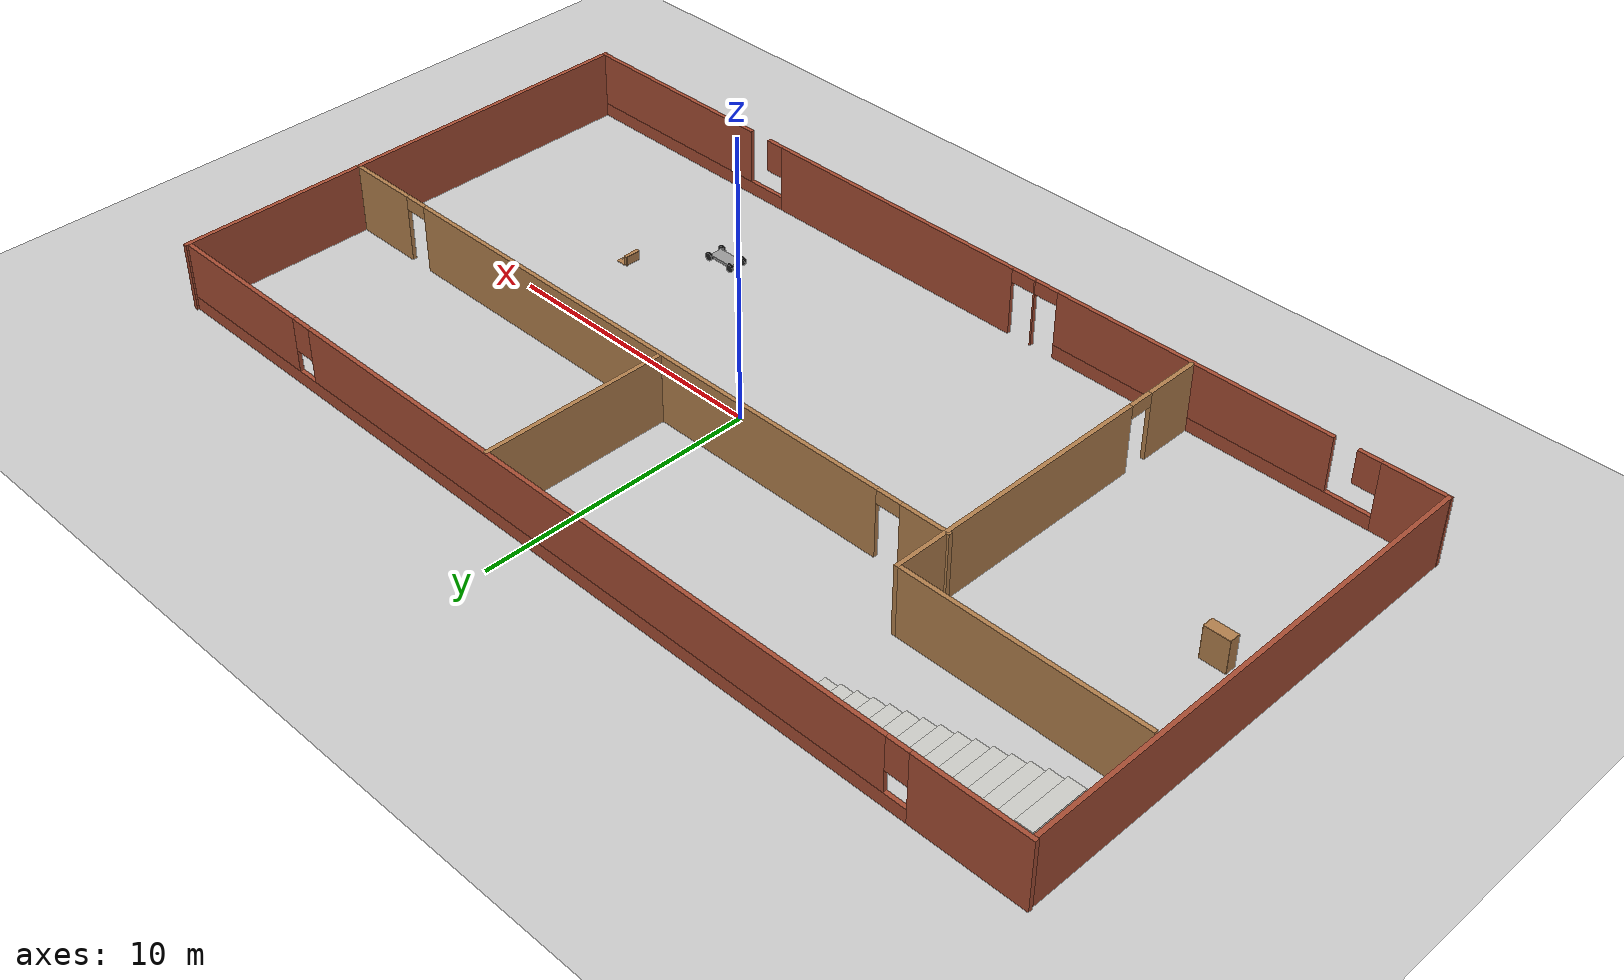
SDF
<sdf version="1.7">
 <world name="default">
  <light name="sun" type="directional">
   <pose>0 0 10 0 -0 0</pose>
   <diffuse>0.8 0.8 0.8 1</diffuse>
   <specular>0.2 0.2 0.2 1</specular>
   <attenuation>
    <range>1000</range>
    <constant>0.9</constant>
    <linear>0.01</linear>
    <quadratic>0.001</quadratic>
   </attenuation>
   <direction>-0.5 0.1 -0.9</direction>
   <spot><inner_angle>0</inner_angle><outer_angle>0</outer_angle><falloff>0</falloff></spot>
  </light>
  <model name="ground_plane">
   <static>1</static>
   <link name="link">
    <collision name="collision">
     <geometry><plane><normal>0 0 1</normal><size>100 100</size></plane></geometry>
     <surface><friction><ode><mu>100</mu><mu2>50</mu2></ode></friction></surface>
    </collision>
    <visual name="visual">
     <cast_shadows>0</cast_shadows>
     <geometry><plane><normal>0 0 1</normal><size>100 100</size></plane></geometry>
     <material>
      <script><uri>file://media/materials/scripts/gazebo.material</uri><name>Gazebo/Grey</name></script>
     </material>
    </visual>
   </link>
  </model>
  <gravity>0 0 -9.8</gravity>
  <magnetic_field>6e-06 2.3e-05 -4.2e-05</magnetic_field>
  <atmosphere type="adiabatic"/>
  <physics type="ode">
   <max_step_size>0.001</max_step_size>
   <real_time_factor>1</real_time_factor>
   <real_time_update_rate>1000</real_time_update_rate>
  </physics>
  <scene><ambient>0.4 0.4 0.4 1</ambient><background>0.7 0.7 0.7 1</background><shadows>1</shadows></scene>
  <spherical_coordinates>
   <surface_model>EARTH_WGS84</surface_model>
   <latitude_deg>0</latitude_deg>
   <longitude_deg>0</longitude_deg>
   <elevation>0</elevation>
   <heading_deg>0</heading_deg>
  </spherical_coordinates>
  <model name="hometown_room">
   <pose>-0.988842 -0.430352 0 0 -0 0</pose>
   <link name="Stairs_0">
    <visual name="Stairs_0_Visual_0">
     <pose>-9.12398 7.75669 0.083333 0 -0 -1.5708</pose>
     <geometry><box><size>1.99198 0.580655 0.166667</size></box></geometry>
     <material>
      <script><uri>file://media/materials/scripts/gazebo.material</uri><name>Gazebo/CeilingTiled</name></script>
      <ambient>1 1 1 1</ambient>
     </material>
     <meta><layer>0</layer></meta>
    </visual>
    <collision name="Stairs_0_Collision_0">
     <geometry><box><size>1.99198 0.580655 0.166667</size></box></geometry>
     <pose>-9.12398 7.75669 0.083333 0 -0 -1.5708</pose>
    </collision>
    <visual name="Stairs_0_Visual_1">
     <pose>-9.70463 7.75669 0.25 0 -0 -1.5708</pose>
     <geometry><box><size>1.99198 0.580655 0.166667</size></box></geometry>
     <material>
      <script><uri>file://media/materials/scripts/gazebo.material</uri><name>Gazebo/CeilingTiled</name></script>
      <ambient>1 1 1 1</ambient>
     </material>
     <meta><layer>0</layer></meta>
    </visual>
    <collision name="Stairs_0_Collision_1">
     <geometry><box><size>1.99198 0.580655 0.166667</size></box></geometry>
     <pose>-9.70463 7.75669 0.25 0 -0 -1.5708</pose>
    </collision>
    <visual name="Stairs_0_Visual_2">
     <pose>-10.2853 7.75669 0.416667 0 -0 -1.5708</pose>
     <geometry><box><size>1.99198 0.580655 0.166667</size></box></geometry>
     <material>
      <script><uri>file://media/materials/scripts/gazebo.material</uri><name>Gazebo/CeilingTiled</name></script>
      <ambient>1 1 1 1</ambient>
     </material>
     <meta><layer>0</layer></meta>
    </visual>
    <collision name="Stairs_0_Collision_2">
     <geometry><box><size>1.99198 0.580655 0.166667</size></box></geometry>
     <pose>-10.2853 7.75669 0.416667 0 -0 -1.5708</pose>
    </collision>
    <visual name="Stairs_0_Visual_3">
     <pose>-10.8659 7.75669 0.583333 0 -0 -1.5708</pose>
     <geometry><box><size>1.99198 0.580655 0.166667</size></box></geometry>
     <material>
      <script><uri>file://media/materials/scripts/gazebo.material</uri><name>Gazebo/CeilingTiled</name></script>
      <ambient>1 1 1 1</ambient>
     </material>
     <meta><layer>0</layer></meta>
    </visual>
    <collision name="Stairs_0_Collision_3">
     <geometry><box><size>1.99198 0.580655 0.166667</size></box></geometry>
     <pose>-10.8659 7.75669 0.583333 0 -0 -1.5708</pose>
    </collision>
    <visual name="Stairs_0_Visual_4">
     <pose>-11.4466 7.75669 0.75 0 -0 -1.5708</pose>
     <geometry><box><size>1.99198 0.580655 0.166667</size></box></geometry>
     <material>
      <script><uri>file://media/materials/scripts/gazebo.material</uri><name>Gazebo/CeilingTiled</name></script>
      <ambient>1 1 1 1</ambient>
     </material>
     <meta><layer>0</layer></meta>
    </visual>
    <collision name="Stairs_0_Collision_4">
     <geometry><box><size>1.99198 0.580655 0.166667</size></box></geometry>
     <pose>-11.4466 7.75669 0.75 0 -0 -1.5708</pose>
    </collision>
    <visual name="Stairs_0_Visual_5">
     <pose>-12.0273 7.75669 0.916667 0 -0 -1.5708</pose>
     <geometry><box><size>1.99198 0.580655 0.166667</size></box></geometry>
     <material>
      <script><uri>file://media/materials/scripts/gazebo.material</uri><name>Gazebo/CeilingTiled</name></script>
      <ambient>1 1 1 1</ambient>
     </material>
     <meta><layer>0</layer></meta>
    </visual>
    <collision name="Stairs_0_Collision_5">
     <geometry><box><size>1.99198 0.580655 0.166667</size></box></geometry>
     <pose>-12.0273 7.75669 0.916667 0 -0 -1.5708</pose>
    </collision>
    <visual name="Stairs_0_Visual_6">
     <pose>-12.6079 7.75669 1.08333 0 -0 -1.5708</pose>
     <geometry><box><size>1.99198 0.580655 0.166667</size></box></geometry>
     <material>
      <script><uri>file://media/materials/scripts/gazebo.material</uri><name>Gazebo/CeilingTiled</name></script>
      <ambient>1 1 1 1</ambient>
     </material>
     <meta><layer>0</layer></meta>
    </visual>
    <collision name="Stairs_0_Collision_6">
     <geometry><box><size>1.99198 0.580655 0.166667</size></box></geometry>
     <pose>-12.6079 7.75669 1.08333 0 -0 -1.5708</pose>
    </collision>
    <visual name="Stairs_0_Visual_7">
     <pose>-13.1886 7.75669 1.25 0 -0 -1.5708</pose>
     <geometry><box><size>1.99198 0.580655 0.166667</size></box></geometry>
     <material>
      <script><uri>file://media/materials/scripts/gazebo.material</uri><name>Gazebo/CeilingTiled</name></script>
      <ambient>1 1 1 1</ambient>
     </material>
     <meta><layer>0</layer></meta>
    </visual>
    <collision name="Stairs_0_Collision_7">
     <geometry><box><size>1.99198 0.580655 0.166667</size></box></geometry>
     <pose>-13.1886 7.75669 1.25 0 -0 -1.5708</pose>
    </collision>
    <visual name="Stairs_0_Visual_8">
     <pose>-13.7692 7.75669 1.41667 0 -0 -1.5708</pose>
     <geometry><box><size>1.99198 0.580655 0.166667</size></box></geometry>
     <material>
      <script><uri>file://media/materials/scripts/gazebo.material</uri><name>Gazebo/CeilingTiled</name></script>
      <ambient>1 1 1 1</ambient>
     </material>
     <meta><layer>0</layer></meta>
    </visual>
    <collision name="Stairs_0_Collision_8">
     <geometry><box><size>1.99198 0.580655 0.166667</size></box></geometry>
     <pose>-13.7692 7.75669 1.41667 0 -0 -1.5708</pose>
    </collision>
    <visual name="Stairs_0_Visual_9">
     <pose>-14.3499 7.75669 1.58333 0 -0 -1.5708</pose>
     <geometry><box><size>1.99198 0.580655 0.166667</size></box></geometry>
     <material>
      <script><uri>file://media/materials/scripts/gazebo.material</uri><name>Gazebo/CeilingTiled</name></script>
      <ambient>1 1 1 1</ambient>
     </material>
     <meta><layer>0</layer></meta>
    </visual>
    <collision name="Stairs_0_Collision_9">
     <geometry><box><size>1.99198 0.580655 0.166667</size></box></geometry>
     <pose>-14.3499 7.75669 1.58333 0 -0 -1.5708</pose>
    </collision>
    <visual name="Stairs_0_Visual_10">
     <pose>-14.9305 7.75669 1.75 0 -0 -1.5708</pose>
     <geometry><box><size>1.99198 0.580655 0.166667</size></box></geometry>
     <material>
      <script><uri>file://media/materials/scripts/gazebo.material</uri><name>Gazebo/CeilingTiled</name></script>
      <ambient>1 1 1 1</ambient>
     </material>
     <meta><layer>0</layer></meta>
    </visual>
    <collision name="Stairs_0_Collision_10">
     <geometry><box><size>1.99198 0.580655 0.166667</size></box></geometry>
     <pose>-14.9305 7.75669 1.75 0 -0 -1.5708</pose>
    </collision>
    <visual name="Stairs_0_Visual_11">
     <pose>-15.5112 7.75669 1.91667 0 -0 -1.5708</pose>
     <geometry><box><size>1.99198 0.580655 0.166667</size></box></geometry>
     <material>
      <script><uri>file://media/materials/scripts/gazebo.material</uri><name>Gazebo/CeilingTiled</name></script>
      <ambient>1 1 1 1</ambient>
     </material>
     <meta><layer>0</layer></meta>
    </visual>
    <collision name="Stairs_0_Collision_11">
     <geometry><box><size>1.99198 0.580655 0.166667</size></box></geometry>
     <pose>-15.5112 7.75669 1.91667 0 -0 -1.5708</pose>
    </collision>
    <visual name="Stairs_0_Visual_12">
     <pose>-16.0918 7.75669 2.08333 0 -0 -1.5708</pose>
     <geometry><box><size>1.99198 0.580655 0.166667</size></box></geometry>
     <material>
      <script><uri>file://media/materials/scripts/gazebo.material</uri><name>Gazebo/CeilingTiled</name></script>
      <ambient>1 1 1 1</ambient>
     </material>
     <meta><layer>0</layer></meta>
    </visual>
    <collision name="Stairs_0_Collision_12">
     <geometry><box><size>1.99198 0.580655 0.166667</size></box></geometry>
     <pose>-16.0918 7.75669 2.08333 0 -0 -1.5708</pose>
    </collision>
    <visual name="Stairs_0_Visual_13">
     <pose>-16.6725 7.75669 2.25 0 -0 -1.5708</pose>
     <geometry><box><size>1.99198 0.580655 0.166667</size></box></geometry>
     <material>
      <script><uri>file://media/materials/scripts/gazebo.material</uri><name>Gazebo/CeilingTiled</name></script>
      <ambient>1 1 1 1</ambient>
     </material>
     <meta><layer>0</layer></meta>
    </visual>
    <collision name="Stairs_0_Collision_13">
     <geometry><box><size>1.99198 0.580655 0.166667</size></box></geometry>
     <pose>-16.6725 7.75669 2.25 0 -0 -1.5708</pose>
    </collision>
    <visual name="Stairs_0_Visual_14">
     <pose>-17.2532 7.75669 2.41667 0 -0 -1.5708</pose>
     <geometry><box><size>1.99198 0.580655 0.166667</size></box></geometry>
     <material>
      <script><uri>file://media/materials/scripts/gazebo.material</uri><name>Gazebo/CeilingTiled</name></script>
      <ambient>1 1 1 1</ambient>
     </material>
     <meta><layer>0</layer></meta>
    </visual>
    <collision name="Stairs_0_Collision_14">
     <geometry><box><size>1.99198 0.580655 0.166667</size></box></geometry>
     <pose>-17.2532 7.75669 2.41667 0 -0 -1.5708</pose>
    </collision>
   </link>
   <link name="Wall_10">
    <collision name="Wall_10_Collision">
     <geometry><box><size>8.75 0.15 2.5</size></box></geometry>
     <pose>0 0 1.25 0 -0 0</pose>
    </collision>
    <visual name="Wall_10_Visual">
     <pose>0 0 1.25 0 -0 0</pose>
     <geometry><box><size>8.75 0.15 2.5</size></box></geometry>
     <material>
      <script><uri>file://media/materials/scripts/gazebo.material</uri><name>Gazebo/Wood</name></script>
      <ambient>1 1 1 1</ambient>
     </material>
     <meta><layer>0</layer></meta>
    </visual>
    <pose>-13.1569 4.06453 0 0 -0 3.14159</pose>
   </link>
   <link name="Wall_12">
    <pose>-8.85687 -2.36047 0 0 -0 -1.5708</pose>
    <visual name="Wall_12_Visual_0">
     <pose>-1.4806 0 1.25 0 -0 0</pose>
     <geometry><box><size>10.0388 0.15 2.5</size></box></geometry>
     <material>
      <script><uri>file://media/materials/scripts/gazebo.material</uri><name>Gazebo/Wood</name></script>
      <ambient>1 1 1 1</ambient>
     </material>
     <meta><layer>0</layer></meta>
    </visual>
    <collision name="Wall_12_Collision_0">
     <geometry><box><size>10.0388 0.15 2.5</size></box></geometry>
     <pose>-1.4806 0 1.25 0 -0 0</pose>
    </collision>
    <visual name="Wall_12_Visual_1">
     <pose>5.46941 0 1.25 0 -0 0</pose>
     <geometry><box><size>2.06119 0.15 2.5</size></box></geometry>
     <material>
      <script><uri>file://media/materials/scripts/gazebo.material</uri><name>Gazebo/Wood</name></script>
      <ambient>1 1 1 1</ambient>
     </material>
     <meta><layer>0</layer></meta>
    </visual>
    <collision name="Wall_12_Collision_1">
     <geometry><box><size>2.06119 0.15 2.5</size></box></geometry>
     <pose>5.46941 0 1.25 0 -0 0</pose>
    </collision>
    <visual name="Wall_12_Visual_2">
     <pose>3.98881 0 2.25 0 -0 0</pose>
     <geometry><box><size>0.9 0.15 0.5</size></box></geometry>
     <material>
      <script><uri>file://media/materials/scripts/gazebo.material</uri><name>Gazebo/Wood</name></script>
      <ambient>1 1 1 1</ambient>
     </material>
     <meta><layer>0</layer></meta>
    </visual>
    <collision name="Wall_12_Collision_2">
     <geometry><box><size>0.9 0.15 0.5</size></box></geometry>
     <pose>3.98881 0 2.25 0 -0 0</pose>
    </collision>
   </link>
   <link name="Wall_14">
    <pose>4.3655 2.11301 0 0 -0 0</pose>
    <visual name="Wall_14_Visual_0">
     <pose>-12.465 0 1.25 0 -0 0</pose>
     <geometry><box><size>1.82008 0.15 2.5</size></box></geometry>
     <material>
      <script><uri>file://media/materials/scripts/gazebo.material</uri><name>Gazebo/Wood</name></script>
      <ambient>1 1 1 1</ambient>
     </material>
     <meta><layer>0</layer></meta>
    </visual>
    <collision name="Wall_14_Collision_0">
     <geometry><box><size>1.82008 0.15 2.5</size></box></geometry>
     <pose>-12.465 0 1.25 0 -0 0</pose>
    </collision>
    <visual name="Wall_14_Visual_1">
     <pose>-0.457925 0 1.25 0 -0 0</pose>
     <geometry><box><size>20.394 0.15 2.5</size></box></geometry>
     <material>
      <script><uri>file://media/materials/scripts/gazebo.material</uri><name>Gazebo/Wood</name></script>
      <ambient>1 1 1 1</ambient>
     </material>
     <meta><layer>0</layer></meta>
    </visual>
    <collision name="Wall_14_Collision_1">
     <geometry><box><size>20.394 0.15 2.5</size></box></geometry>
     <pose>-0.457925 0 1.25 0 -0 0</pose>
    </collision>
    <visual name="Wall_14_Visual_2">
     <pose>12.007 0 1.25 0 -0 0</pose>
     <geometry><box><size>2.73593 0.15 2.5</size></box></geometry>
     <material>
      <script><uri>file://media/materials/scripts/gazebo.material</uri><name>Gazebo/Wood</name></script>
      <ambient>1 1 1 1</ambient>
     </material>
     <meta><layer>0</layer></meta>
    </visual>
    <collision name="Wall_14_Collision_2">
     <geometry><box><size>2.73593 0.15 2.5</size></box></geometry>
     <pose>12.007 0 1.25 0 -0 0</pose>
    </collision>
    <visual name="Wall_14_Visual_3">
     <pose>-11.1049 0 2.25 0 -0 0</pose>
     <geometry><box><size>0.9 0.15 0.5</size></box></geometry>
     <material>
      <script><uri>file://media/materials/scripts/gazebo.material</uri><name>Gazebo/Wood</name></script>
      <ambient>1 1 1 1</ambient>
     </material>
     <meta><layer>0</layer></meta>
    </visual>
    <collision name="Wall_14_Collision_3">
     <geometry><box><size>0.9 0.15 0.5</size></box></geometry>
     <pose>-11.1049 0 2.25 0 -0 0</pose>
    </collision>
    <visual name="Wall_14_Visual_4">
     <pose>10.1891 0 2.25 0 -0 0</pose>
     <geometry><box><size>0.9 0.15 0.5</size></box></geometry>
     <material>
      <script><uri>file://media/materials/scripts/gazebo.material</uri><name>Gazebo/Wood</name></script>
      <ambient>1 1 1 1</ambient>
     </material>
     <meta><layer>0</layer></meta>
    </visual>
    <collision name="Wall_14_Collision_4">
     <geometry><box><size>0.9 0.15 0.5</size></box></geometry>
     <pose>10.1891 0 2.25 0 -0 0</pose>
    </collision>
   </link>
   <link name="Wall_16">
    <collision name="Wall_16_Collision">
     <geometry><box><size>6.75 0.15 2.5</size></box></geometry>
     <pose>0 0 1.25 0 -0 0</pose>
    </collision>
    <visual name="Wall_16_Visual">
     <pose>0 0 1.25 0 -0 0</pose>
     <geometry><box><size>6.75 0.15 2.5</size></box></geometry>
     <material>
      <script><uri>file://media/materials/scripts/gazebo.material</uri><name>Gazebo/Wood</name></script>
      <ambient>1 1 1 1</ambient>
     </material>
     <meta><layer>0</layer></meta>
    </visual>
    <pose>2.63274 5.51955 0 0 -0 -1.5708</pose>
   </link>
   <link name="Wall_2">
    <collision name="Wall_2_Collision">
     <geometry><box><size>17.75 0.15 2.5</size></box></geometry>
     <pose>0 0 1.25 0 -0 0</pose>
    </collision>
    <visual name="Wall_2_Visual">
     <pose>0 0 1.25 0 -0 0</pose>
     <geometry><box><size>17.75 0.15 2.5</size></box></geometry>
     <material>
      <script><uri>file://media/materials/scripts/gazebo.material</uri><name>Gazebo/Bricks</name></script>
      <ambient>1 1 1 1</ambient>
     </material>
     <meta><layer>0</layer></meta>
    </visual>
    <pose>-17.6549 -0.091512 0 0 -0 -1.5708</pose>
   </link>
   <link name="Wall_4">
    <pose>-0.014264 8.85424 0 0 -0 0</pose>
    <visual name="Wall_4_Visual_0">
     <pose>-15.747 0 1.25 0 -0 0</pose>
     <geometry><box><size>4.00597 0.15 2.5</size></box></geometry>
     <material>
      <script><uri>file://media/materials/scripts/gazebo.material</uri><name>Gazebo/Bricks</name></script>
      <ambient>1 1 1 1</ambient>
     </material>
     <meta><layer>0</layer></meta>
    </visual>
    <collision name="Wall_4_Collision_0">
     <geometry><box><size>4.00597 0.15 2.5</size></box></geometry>
     <pose>-15.747 0 1.25 0 -0 0</pose>
    </collision>
    <visual name="Wall_4_Visual_1">
     <pose>2.00298 0 0.25 0 -0 0</pose>
     <geometry><box><size>31.494 0.15 0.5</size></box></geometry>
     <material>
      <script><uri>file://media/materials/scripts/gazebo.material</uri><name>Gazebo/Bricks</name></script>
      <ambient>1 1 1 1</ambient>
     </material>
     <meta><layer>0</layer></meta>
    </visual>
    <collision name="Wall_4_Collision_1">
     <geometry><box><size>31.494 0.15 0.5</size></box></geometry>
     <pose>2.00298 0 0.25 0 -0 0</pose>
    </collision>
    <visual name="Wall_4_Visual_2">
     <pose>-0.915403 0 1.5 0 -0 0</pose>
     <geometry><box><size>24.0573 0.15 2</size></box></geometry>
     <material>
      <script><uri>file://media/materials/scripts/gazebo.material</uri><name>Gazebo/Bricks</name></script>
      <ambient>1 1 1 1</ambient>
     </material>
     <meta><layer>0</layer></meta>
    </visual>
    <collision name="Wall_4_Collision_2">
     <geometry><box><size>24.0573 0.15 2</size></box></geometry>
     <pose>-0.915403 0 1.5 0 -0 0</pose>
    </collision>
    <visual name="Wall_4_Visual_3">
     <pose>14.8316 0 1.5 0 -0 0</pose>
     <geometry><box><size>5.83677 0.15 2</size></box></geometry>
     <material>
      <script><uri>file://media/materials/scripts/gazebo.material</uri><name>Gazebo/Bricks</name></script>
      <ambient>1 1 1 1</ambient>
     </material>
     <meta><layer>0</layer></meta>
    </visual>
    <collision name="Wall_4_Collision_3">
     <geometry><box><size>5.83677 0.15 2</size></box></geometry>
     <pose>14.8316 0 1.5 0 -0 0</pose>
    </collision>
    <visual name="Wall_4_Visual_4">
     <pose>-13.344 0 1.9 0 -0 0</pose>
     <geometry><box><size>0.8 0.15 1.2</size></box></geometry>
     <material>
      <script><uri>file://media/materials/scripts/gazebo.material</uri><name>Gazebo/Bricks</name></script>
      <ambient>1 1 1 1</ambient>
     </material>
     <meta><layer>0</layer></meta>
    </visual>
    <collision name="Wall_4_Collision_4">
     <geometry><box><size>0.8 0.15 1.2</size></box></geometry>
     <pose>-13.344 0 1.9 0 -0 0</pose>
    </collision>
    <visual name="Wall_4_Visual_5">
     <pose>11.5132 0 1.9 0 -0 0</pose>
     <geometry><box><size>0.8 0.15 1.2</size></box></geometry>
     <material>
      <script><uri>file://media/materials/scripts/gazebo.material</uri><name>Gazebo/Bricks</name></script>
      <ambient>1 1 1 1</ambient>
     </material>
     <meta><layer>0</layer></meta>
    </visual>
    <collision name="Wall_4_Collision_5">
     <geometry><box><size>0.8 0.15 1.2</size></box></geometry>
     <pose>11.5132 0 1.9 0 -0 0</pose>
    </collision>
   </link>
   <link name="Wall_6">
    <pose>0.00299 -8.88852 0 0 -0 0</pose>
    <visual name="Wall_6_Visual_0">
     <pose>-16.617 0 1.25 0 -0 0</pose>
     <geometry><box><size>2.26593 0.15 2.5</size></box></geometry>
     <material>
      <script><uri>file://media/materials/scripts/gazebo.material</uri><name>Gazebo/Bricks</name></script>
      <ambient>1 1 1 1</ambient>
     </material>
     <meta><layer>0</layer></meta>
    </visual>
    <collision name="Wall_6_Collision_0">
     <geometry><box><size>2.26593 0.15 2.5</size></box></geometry>
     <pose>-16.617 0 1.25 0 -0 0</pose>
    </collision>
    <visual name="Wall_6_Visual_1">
     <pose>-2.73693 0 1.25 0 -0 0</pose>
     <geometry><box><size>0.048627 0.15 2.5</size></box></geometry>
     <material>
      <script><uri>file://media/materials/scripts/gazebo.material</uri><name>Gazebo/Bricks</name></script>
      <ambient>1 1 1 1</ambient>
     </material>
     <meta><layer>0</layer></meta>
    </visual>
    <collision name="Wall_6_Collision_1">
     <geometry><box><size>0.048627 0.15 2.5</size></box></geometry>
     <pose>-2.73693 0 1.25 0 -0 0</pose>
    </collision>
    <visual name="Wall_6_Visual_2">
     <pose>3.34959 0 1.25 0 -0 0</pose>
     <geometry><box><size>10.3244 0.15 2.5</size></box></geometry>
     <material>
      <script><uri>file://media/materials/scripts/gazebo.material</uri><name>Gazebo/Bricks</name></script>
      <ambient>1 1 1 1</ambient>
     </material>
     <meta><layer>0</layer></meta>
    </visual>
    <collision name="Wall_6_Collision_2">
     <geometry><box><size>10.3244 0.15 2.5</size></box></geometry>
     <pose>3.34959 0 1.25 0 -0 0</pose>
    </collision>
    <visual name="Wall_6_Visual_3">
     <pose>-9.57266 0 0.25 0 -0 0</pose>
     <geometry><box><size>11.8228 0.15 0.5</size></box></geometry>
     <material>
      <script><uri>file://media/materials/scripts/gazebo.material</uri><name>Gazebo/Bricks</name></script>
      <ambient>1 1 1 1</ambient>
     </material>
     <meta><layer>0</layer></meta>
    </visual>
    <collision name="Wall_6_Collision_3">
     <geometry><box><size>11.8228 0.15 0.5</size></box></geometry>
     <pose>-9.57266 0 0.25 0 -0 0</pose>
    </collision>
    <visual name="Wall_6_Visual_4">
     <pose>13.1309 0 0.25 0 -0 0</pose>
     <geometry><box><size>9.2382 0.15 0.5</size></box></geometry>
     <material>
      <script><uri>file://media/materials/scripts/gazebo.material</uri><name>Gazebo/Bricks</name></script>
      <ambient>1 1 1 1</ambient>
     </material>
     <meta><layer>0</layer></meta>
    </visual>
    <collision name="Wall_6_Collision_4">
     <geometry><box><size>9.2382 0.15 0.5</size></box></geometry>
     <pose>13.1309 0 0.25 0 -0 0</pose>
    </collision>
    <visual name="Wall_6_Visual_5">
     <pose>-8.77273 0 1.5 0 -0 0</pose>
     <geometry><box><size>10.223 0.15 2</size></box></geometry>
     <material>
      <script><uri>file://media/materials/scripts/gazebo.material</uri><name>Gazebo/Bricks</name></script>
      <ambient>1 1 1 1</ambient>
     </material>
     <meta><layer>0</layer></meta>
    </visual>
    <collision name="Wall_6_Collision_5">
     <geometry><box><size>10.223 0.15 2</size></box></geometry>
     <pose>-8.77273 0 1.5 0 -0 0</pose>
    </collision>
    <visual name="Wall_6_Visual_6">
     <pose>-8.77273 0 1.5 0 -0 0</pose>
     <geometry><box><size>10.223 0.15 2</size></box></geometry>
     <material>
      <script><uri>file://media/materials/scripts/gazebo.material</uri><name>Gazebo/Bricks</name></script>
      <ambient>1 1 1 1</ambient>
     </material>
     <meta><layer>0</layer></meta>
    </visual>
    <collision name="Wall_6_Collision_6">
     <geometry><box><size>10.223 0.15 2</size></box></geometry>
     <pose>-8.77273 0 1.5 0 -0 0</pose>
    </collision>
    <visual name="Wall_6_Visual_7">
     <pose>13.8693 0 1.5 0 -0 0</pose>
     <geometry><box><size>7.76139 0.15 2</size></box></geometry>
     <material>
      <script><uri>file://media/materials/scripts/gazebo.material</uri><name>Gazebo/Bricks</name></script>
      <ambient>1 1 1 1</ambient>
     </material>
     <meta><layer>0</layer></meta>
    </visual>
    <collision name="Wall_6_Collision_7">
     <geometry><box><size>7.76139 0.15 2</size></box></geometry>
     <pose>13.8693 0 1.5 0 -0 0</pose>
    </collision>
    <visual name="Wall_6_Visual_8">
     <pose>-15.0841 0 1.9 0 -0 0</pose>
     <geometry><box><size>0.799863 0.15 1.2</size></box></geometry>
     <material>
      <script><uri>file://media/materials/scripts/gazebo.material</uri><name>Gazebo/Bricks</name></script>
      <ambient>1 1 1 1</ambient>
     </material>
     <meta><layer>0</layer></meta>
    </visual>
    <collision name="Wall_6_Collision_8">
     <geometry><box><size>0.799863 0.15 1.2</size></box></geometry>
     <pose>-15.0841 0 1.9 0 -0 0</pose>
    </collision>
    <visual name="Wall_6_Visual_9">
     <pose>8.85021 0 1.9 0 -0 0</pose>
     <geometry><box><size>0.676806 0.15 1.2</size></box></geometry>
     <material>
      <script><uri>file://media/materials/scripts/gazebo.material</uri><name>Gazebo/Bricks</name></script>
      <ambient>1 1 1 1</ambient>
     </material>
     <meta><layer>0</layer></meta>
    </visual>
    <collision name="Wall_6_Collision_9">
     <geometry><box><size>0.676806 0.15 1.2</size></box></geometry>
     <pose>8.85021 0 1.9 0 -0 0</pose>
    </collision>
    <visual name="Wall_6_Visual_10">
     <pose>-2.26262 0 2.25 0 -0 0</pose>
     <geometry><box><size>0.9 0.15 0.5</size></box></geometry>
     <material>
      <script><uri>file://media/materials/scripts/gazebo.material</uri><name>Gazebo/Bricks</name></script>
      <ambient>1 1 1 1</ambient>
     </material>
     <meta><layer>0</layer></meta>
    </visual>
    <collision name="Wall_6_Collision_10">
     <geometry><box><size>0.9 0.15 0.5</size></box></geometry>
     <pose>-2.26262 0 2.25 0 -0 0</pose>
    </collision>
    <visual name="Wall_6_Visual_11">
     <pose>-3.21124 0 2.25 0 -0 0</pose>
     <geometry><box><size>0.9 0.15 0.5</size></box></geometry>
     <material>
      <script><uri>file://media/materials/scripts/gazebo.material</uri><name>Gazebo/Bricks</name></script>
      <ambient>1 1 1 1</ambient>
     </material>
     <meta><layer>0</layer></meta>
    </visual>
    <collision name="Wall_6_Collision_11">
     <geometry><box><size>0.9 0.15 0.5</size></box></geometry>
     <pose>-3.21124 0 2.25 0 -0 0</pose>
    </collision>
    <visual name="Wall_6_Visual_12">
     <pose>-3.21124 0 2.25 0 -0 0</pose>
     <geometry><box><size>0.9 0.15 0.5</size></box></geometry>
     <material>
      <script><uri>file://media/materials/scripts/gazebo.material</uri><name>Gazebo/Bricks</name></script>
      <ambient>1 1 1 1</ambient>
     </material>
     <meta><layer>0</layer></meta>
    </visual>
    <collision name="Wall_6_Collision_12">
     <geometry><box><size>0.9 0.15 0.5</size></box></geometry>
     <pose>-3.21124 0 2.25 0 -0 0</pose>
    </collision>
   </link>
   <link name="Wall_8">
    <collision name="Wall_8_Collision">
     <geometry><box><size>18 0.15 2.5</size></box></geometry>
     <pose>0 0 1.25 0 -0 0</pose>
    </collision>
    <visual name="Wall_8_Visual">
     <pose>0 0 1.25 0 -0 0</pose>
     <geometry><box><size>18 0.15 2.5</size></box></geometry>
     <material>
      <script><uri>file://media/materials/scripts/gazebo.material</uri><name>Gazebo/Bricks</name></script>
      <ambient>1 1 1 1</ambient>
     </material>
     <meta><layer>0</layer></meta>
    </visual>
    <pose>17.6893 0 0 0 -0 -1.5708</pose>
   </link>
   <static>1</static>
  </model>
  <model name="wooden_case">
   <link name="base">
    <pose>0 0 0.024 0 -0 0</pose>
    <inertial>
     <pose>-0.022184 0 0.171592 0 -0 0</pose>
     <mass>3.96264</mass>
     <inertia>
      <ixx>0.213536</ixx>
      <ixy>0</ixy>
      <ixz>0.000779377</ixz>
      <iyy>0.0708943</iyy>
      <iyz>0</iyz>
      <izz>0.154604</izz>
     </inertia>
    </inertial>
    <collision name="collision_back">
     <pose>-0.053975 0 0.1778 0 -0 0</pose>
     <geometry><box><size>0.01905 0.5461 0.3175</size></box></geometry>
     <surface>
      <contact>
       <poissons_ratio>0.347</poissons_ratio>
       <elastic_modulus>8.8e+09</elastic_modulus>
       <ode><kp>100000</kp><kd>100</kd><max_vel>100</max_vel><min_depth>0.001</min_depth></ode>
      </contact>
      <friction>
       <torsional>
        <coefficient>1</coefficient>
        <use_patch_radius>0</use_patch_radius>
        <surface_radius>0.01</surface_radius>
       </torsional>
      </friction>
     </surface>
    </collision>
    <visual name="visual_back">
     <pose>-0.053975 0 0.1778 0 -0 0</pose>
     <geometry><box><size>0.01905 0.5461 0.3175</size></box></geometry>
     <material>
      <script><uri>file://media/materials/scripts/gazebo.material</uri><name>Gazebo/Wood</name></script>
     </material>
    </visual>
    <collision name="collision_bottom">
     <pose>0 0 0.009525 0 -0 0</pose>
     <geometry><box><size>0.127 0.5842 0.01905</size></box></geometry>
     <surface>
      <contact>
       <poissons_ratio>0.347</poissons_ratio>
       <elastic_modulus>8.8e+09</elastic_modulus>
       <ode><kp>100000</kp><kd>100</kd><max_vel>100</max_vel><min_depth>0.001</min_depth></ode>
      </contact>
      <friction>
       <torsional>
        <coefficient>1</coefficient>
        <use_patch_radius>0</use_patch_radius>
        <surface_radius>0.01</surface_radius>
       </torsional>
      </friction>
     </surface>
    </collision>
    <visual name="visual_bottom">
     <pose>0 0 0.009525 0 -0 0</pose>
     <geometry><box><size>0.127 0.5842 0.01905</size></box></geometry>
     <material>
      <script><uri>file://media/materials/scripts/gazebo.material</uri><name>Gazebo/Wood</name></script>
     </material>
    </visual>
    <collision name="collision_top">
     <pose>0 0 0.346075 0 -0 0</pose>
     <geometry><box><size>0.127 0.5842 0.01905</size></box></geometry>
     <surface>
      <contact>
       <poissons_ratio>0.347</poissons_ratio>
       <elastic_modulus>8.8e+09</elastic_modulus>
       <ode><kp>100000</kp><kd>100</kd><max_vel>100</max_vel><min_depth>0.001</min_depth></ode>
      </contact>
      <friction>
       <torsional>
        <coefficient>1</coefficient>
        <use_patch_radius>0</use_patch_radius>
        <surface_radius>0.01</surface_radius>
       </torsional>
      </friction>
     </surface>
    </collision>
    <visual name="visual_top">
     <pose>0 0 0.346075 0 -0 0</pose>
     <geometry><box><size>0.127 0.5842 0.01905</size></box></geometry>
     <material>
      <script><uri>file://media/materials/scripts/gazebo.material</uri><name>Gazebo/Wood</name></script>
     </material>
    </visual>
    <collision name="collision_left">
     <pose>0 -0.282575 0.1778 0 -0 0</pose>
     <geometry><box><size>0.127 0.01905 0.3175</size></box></geometry>
     <surface>
      <contact>
       <poissons_ratio>0.347</poissons_ratio>
       <elastic_modulus>8.8e+09</elastic_modulus>
       <ode><kp>100000</kp><kd>100</kd><max_vel>100</max_vel><min_depth>0.001</min_depth></ode>
      </contact>
      <friction>
       <torsional>
        <coefficient>1</coefficient>
        <use_patch_radius>0</use_patch_radius>
        <surface_radius>0.01</surface_radius>
       </torsional>
      </friction>
     </surface>
    </collision>
    <visual name="visual_left">
     <pose>0 -0.282575 0.1778 0 -0 0</pose>
     <geometry><box><size>0.127 0.01905 0.3175</size></box></geometry>
     <material>
      <script><uri>file://media/materials/scripts/gazebo.material</uri><name>Gazebo/Wood</name></script>
     </material>
    </visual>
    <collision name="collision_right">
     <pose>0 0.282575 0.1778 0 -0 0</pose>
     <geometry><box><size>0.127 0.01905 0.3175</size></box></geometry>
     <surface>
      <contact>
       <poissons_ratio>0.347</poissons_ratio>
       <elastic_modulus>8.8e+09</elastic_modulus>
       <ode><kp>100000</kp><kd>100</kd><max_vel>100</max_vel><min_depth>0.001</min_depth></ode>
      </contact>
      <friction>
       <torsional>
        <coefficient>1</coefficient>
        <use_patch_radius>0</use_patch_radius>
        <surface_radius>0.01</surface_radius>
       </torsional>
      </friction>
     </surface>
    </collision>
    <visual name="visual_right">
     <pose>0 0.282575 0.1778 0 -0 0</pose>
     <geometry><box><size>0.127 0.01905 0.3175</size></box></geometry>
     <material>
      <script><uri>file://media/materials/scripts/gazebo.material</uri><name>Gazebo/Wood</name></script>
     </material>
    </visual>
    <collision name="collision_block_left">
     <pose>0.0095 -0.2151 -0.012 0 -0 0</pose>
     <geometry><box><size>0.108 0.05 0.024</size></box></geometry>
     <surface>
      <contact>
       <poissons_ratio>0.347</poissons_ratio>
       <elastic_modulus>8.8e+09</elastic_modulus>
       <ode><kp>100000</kp><kd>100</kd><max_vel>100</max_vel><min_depth>0.001</min_depth></ode>
      </contact>
      <friction>
       <torsional>
        <coefficient>1</coefficient>
        <use_patch_radius>0</use_patch_radius>
        <surface_radius>0.01</surface_radius>
       </torsional>
      </friction>
     </surface>
    </collision>
    <visual name="visual_block_left">
     <pose>0.0095 -0.2151 -0.012 0 -0 0</pose>
     <geometry><box><size>0.108 0.05 0.024</size></box></geometry>
     <material>
      <script><uri>file://media/materials/scripts/gazebo.material</uri><name>Gazebo/Wood</name></script>
     </material>
    </visual>
    <collision name="collision_block_right">
     <pose>0.0095 0.2151 -0.012 0 -0 0</pose>
     <geometry><box><size>0.108 0.05 0.024</size></box></geometry>
     <surface>
      <contact>
       <poissons_ratio>0.347</poissons_ratio>
       <elastic_modulus>8.8e+09</elastic_modulus>
       <ode><kp>100000</kp><kd>100</kd><max_vel>100</max_vel><min_depth>0.001</min_depth></ode>
      </contact>
      <friction>
       <torsional>
        <coefficient>1</coefficient>
        <use_patch_radius>0</use_patch_radius>
        <surface_radius>0.01</surface_radius>
       </torsional>
      </friction>
     </surface>
    </collision>
    <visual name="visual_block_right">
     <pose>0.0095 0.2151 -0.012 0 -0 0</pose>
     <geometry><box><size>0.108 0.05 0.024</size></box></geometry>
     <material>
      <script><uri>file://media/materials/scripts/gazebo.material</uri><name>Gazebo/Wood</name></script>
     </material>
    </visual>
   </link>
   <link name="lid">
    <pose>0.243775 0 0.009525 0 -0 0</pose>
    <inertial>
     <mass>1.97874</mass>
     <inertia>
      <ixx>0.0563367</ixx>
      <ixy>0</ixy>
      <ixz>0</ixz>
      <iyy>0.020911</iyy>
      <iyz>0</iyz>
      <izz>0.0771281</izz>
     </inertia>
    </inertial>
    <collision name="collision">
     <geometry><box><size>0.3556 0.5842 0.01905</size></box></geometry>
     <surface>
      <contact>
       <poissons_ratio>0.347</poissons_ratio>
       <elastic_modulus>8.8e+09</elastic_modulus>
       <ode><kp>100000</kp><kd>100</kd><max_vel>100</max_vel><min_depth>0.001</min_depth></ode>
      </contact>
      <friction>
       <torsional>
        <coefficient>1</coefficient>
        <use_patch_radius>0</use_patch_radius>
        <surface_radius>0.01</surface_radius>
       </torsional>
      </friction>
     </surface>
    </collision>
    <visual name="visual">
     <geometry><box><size>0.3556 0.5842 0.01905</size></box></geometry>
     <material>
      <script><uri>file://media/materials/scripts/gazebo.material</uri><name>Gazebo/Wood</name></script>
     </material>
    </visual>
    <visual name="tee_nut_1">
     <pose>0.122 -0.216 0 0 -0 0</pose>
     <geometry><cylinder><radius>0.00635</radius><length>0.0192405</length></cylinder></geometry>
     <material>
      <script><uri>file://media/materials/scripts/gazebo.material</uri><name>Gazebo/Grey</name></script>
     </material>
    </visual>
    <visual name="tee_nut_2">
     <pose>0.122 -0.088 0 0 -0 0</pose>
     <geometry><cylinder><radius>0.00635</radius><length>0.0192405</length></cylinder></geometry>
     <material>
      <script><uri>file://media/materials/scripts/gazebo.material</uri><name>Gazebo/Grey</name></script>
     </material>
    </visual>
    <visual name="tee_nut_3">
     <pose>0.122 0.088 0 0 -0 0</pose>
     <geometry><cylinder><radius>0.00635</radius><length>0.0192405</length></cylinder></geometry>
     <material>
      <script><uri>file://media/materials/scripts/gazebo.material</uri><name>Gazebo/Grey</name></script>
     </material>
    </visual>
    <visual name="tee_nut_4">
     <pose>0.122 0.216 0 0 -0 0</pose>
     <geometry><cylinder><radius>0.00635</radius><length>0.0192405</length></cylinder></geometry>
     <material>
      <script><uri>file://media/materials/scripts/gazebo.material</uri><name>Gazebo/Grey</name></script>
     </material>
    </visual>
   </link>
   <joint name="lid_hinge" type="revolute">
    <pose>-0.1778 0 0.01905 0 -0 0</pose>
    <parent>base</parent>
    <child>lid</child>
    <axis>
     <xyz>0 1 0</xyz>
     <limit><upper>0.523599</upper><lower>-1.5708</lower></limit>
     <dynamics><spring_reference>0</spring_reference><spring_stiffness>0</spring_stiffness></dynamics>
    </axis>
   </joint>
   <pose>8.72392 -3.36938 -0.001057 0 -0.000425 0</pose>
  </model>
  <model name="bookshelf">
   <static>1</static>
   <link name="link">
    <inertial><mass>1</mass></inertial>
    <collision name="back">
     <pose>0 0.005 0.6 0 -0 0</pose>
     <geometry><box><size>0.9 0.01 1.2</size></box></geometry>
    </collision>
    <visual name="visual1">
     <pose>0 0.005 0.6 0 -0 0</pose>
     <geometry><box><size>0.9 0.01 1.2</size></box></geometry>
     <material>
      <script><uri>file://media/materials/scripts/gazebo.material</uri><name>Gazebo/Wood</name></script>
     </material>
    </visual>
    <collision name="left_side">
     <pose>0.45 -0.195 0.6 0 -0 0</pose>
     <geometry><box><size>0.02 0.4 1.2</size></box></geometry>
    </collision>
    <visual name="visual2">
     <pose>0.45 -0.195 0.6 0 -0 0</pose>
     <geometry><box><size>0.02 0.4 1.2</size></box></geometry>
     <material>
      <script><uri>file://media/materials/scripts/gazebo.material</uri><name>Gazebo/Wood</name></script>
     </material>
    </visual>
    <collision name="right_side">
     <pose>-0.45 -0.195 0.6 0 -0 0</pose>
     <geometry><box><size>0.02 0.4 1.2</size></box></geometry>
    </collision>
    <visual name="visual3">
     <pose>-0.45 -0.195 0.6 0 -0 0</pose>
     <geometry><box><size>0.02 0.4 1.2</size></box></geometry>
     <material>
      <script><uri>file://media/materials/scripts/gazebo.material</uri><name>Gazebo/Wood</name></script>
     </material>
    </visual>
    <collision name="bottom">
     <pose>0 -0.195 0.03 0 -0 0</pose>
     <geometry><box><size>0.88 0.4 0.06</size></box></geometry>
    </collision>
    <visual name="visual4">
     <pose>0 -0.195 0.03 0 -0 0</pose>
     <geometry><box><size>0.88 0.4 0.06</size></box></geometry>
     <material>
      <script><uri>file://media/materials/scripts/gazebo.material</uri><name>Gazebo/Wood</name></script>
     </material>
    </visual>
    <collision name="top">
     <pose>0 -0.195 1.19 0 -0 0</pose>
     <geometry><box><size>0.88 0.4 0.02</size></box></geometry>
    </collision>
    <visual name="visual5">
     <pose>0 -0.195 1.19 0 -0 0</pose>
     <geometry><box><size>0.88 0.4 0.02</size></box></geometry>
     <material>
      <script><uri>file://media/materials/scripts/gazebo.material</uri><name>Gazebo/Wood</name></script>
     </material>
    </visual>
    <collision name="low_shelf">
     <pose>0 -0.195 0.43 0 -0 0</pose>
     <geometry><box><size>0.88 0.4 0.02</size></box></geometry>
    </collision>
    <visual name="visual6">
     <pose>0 -0.195 0.43 0 -0 0</pose>
     <geometry><box><size>0.88 0.4 0.02</size></box></geometry>
     <material>
      <script><uri>file://media/materials/scripts/gazebo.material</uri><name>Gazebo/Wood</name></script>
     </material>
    </visual>
    <collision name="high_shelf">
     <pose>0 -0.195 0.8 0 -0 0</pose>
     <geometry><box><size>0.88 0.4 0.02</size></box></geometry>
    </collision>
    <visual name="visual7">
     <pose>0 -0.195 0.8 0 -0 0</pose>
     <geometry><box><size>0.88 0.4 0.02</size></box></geometry>
     <material>
      <script><uri>file://media/materials/scripts/gazebo.material</uri><name>Gazebo/Wood</name></script>
     </material>
    </visual>
   </link>
   <pose>-16.7111 -1.51694 0 0 -0 0</pose>
  </model>
  <model name="cart_front_steer">
   <link name="chassis">
    <pose>0 0 0.15 0 -0 0</pose>
    <inertial>
     <pose>0.1 0 0 0 -0 0</pose>
     <mass>10</mass>
     <inertia>
      <ixx>0.216667</ixx>
      <iyy>0.841667</iyy>
      <izz>1.04167</izz>
      <ixy>0</ixy>
      <ixz>0</ixz>
      <iyz>0</iyz>
     </inertia>
    </inertial>
    <collision name="collision"><geometry><box><size>1 0.5 0.1</size></box></geometry></collision>
    <visual name="visual">
     <geometry><box><size>1 0.5 0.1</size></box></geometry>
     <material>
      <script><uri>file://media/materials/scripts/gazebo.material</uri><name>Gazebo/Grey</name></script>
     </material>
    </visual>
   </link>
   <link name="wheel_front_left">
    <pose>0.5 0.298 0.15 -1.5708 -0.087266 0</pose>
    <inertial>
     <mass>0.5</mass>
     <inertia>
      <ixx>0.00307917</ixx>
      <iyy>0.00307917</iyy>
      <izz>0.005625</izz>
      <ixy>0</ixy>
      <ixz>0</ixz>
      <iyz>0</iyz>
     </inertia>
    </inertial>
    <collision name="collision">
     <geometry><cylinder><radius>0.15</radius><length>0.08</length></cylinder></geometry>
    </collision>
    <visual name="visual">
     <geometry><cylinder><radius>0.15</radius><length>0.08</length></cylinder></geometry>
     <material>
      <script><uri>file://media/materials/scripts/gazebo.material</uri><name>Gazebo/Black</name></script>
     </material>
    </visual>
   </link>
   <joint name="wheel_front_left_steer_spin" type="universal">
    <parent>chassis</parent>
    <child>wheel_front_left</child>
    <axis>
     <xyz>0 -1 0</xyz>
     <limit><lower>-0.610865</lower><upper>0.610865</upper></limit>
     <dynamics><spring_reference>0</spring_reference><spring_stiffness>0</spring_stiffness></dynamics>
    </axis>
    <axis2>
     <xyz>0 0 1</xyz>
     <limit><upper>1e+16</upper><lower>-1e+16</lower></limit>
     <dynamics><spring_reference>0</spring_reference><spring_stiffness>0</spring_stiffness></dynamics>
    </axis2>
   </joint>
   <link name="wheel_front_right">
    <pose>0.5 -0.298 0.15 -1.5708 -0.087266 0</pose>
    <inertial>
     <mass>0.5</mass>
     <inertia>
      <ixx>0.00307917</ixx>
      <iyy>0.00307917</iyy>
      <izz>0.005625</izz>
      <ixy>0</ixy>
      <ixz>0</ixz>
      <iyz>0</iyz>
     </inertia>
    </inertial>
    <collision name="collision">
     <geometry><cylinder><radius>0.15</radius><length>0.08</length></cylinder></geometry>
    </collision>
    <visual name="visual">
     <geometry><cylinder><radius>0.15</radius><length>0.08</length></cylinder></geometry>
     <material>
      <script><uri>file://media/materials/scripts/gazebo.material</uri><name>Gazebo/Black</name></script>
     </material>
    </visual>
   </link>
   <joint name="wheel_front_right_steer_spin" type="universal">
    <parent>chassis</parent>
    <child>wheel_front_right</child>
    <axis>
     <xyz>0 -1 0</xyz>
     <limit><lower>-0.610865</lower><upper>0.610865</upper></limit>
     <dynamics><spring_reference>0</spring_reference><spring_stiffness>0</spring_stiffness></dynamics>
    </axis>
    <axis2>
     <xyz>0 0 1</xyz>
     <limit><upper>1e+16</upper><lower>-1e+16</lower></limit>
     <dynamics><spring_reference>0</spring_reference><spring_stiffness>0</spring_stiffness></dynamics>
    </axis2>
   </joint>
   <link name="wheel_rear_left">
    <pose>-0.5 0.298 0.15 -1.5708 0 0</pose>
    <inertial>
     <mass>0.5</mass>
     <inertia>
      <ixx>0.00307917</ixx>
      <iyy>0.00307917</iyy>
      <izz>0.005625</izz>
      <ixy>0</ixy>
      <ixz>0</ixz>
      <iyz>0</iyz>
     </inertia>
    </inertial>
    <collision name="collision">
     <geometry><cylinder><radius>0.15</radius><length>0.08</length></cylinder></geometry>
    </collision>
    <visual name="visual">
     <geometry><cylinder><radius>0.15</radius><length>0.08</length></cylinder></geometry>
     <material>
      <script><uri>file://media/materials/scripts/gazebo.material</uri><name>Gazebo/Black</name></script>
     </material>
    </visual>
   </link>
   <joint name="wheel_rear_left_spin" type="revolute">
    <parent>chassis</parent>
    <child>wheel_rear_left</child>
    <axis>
     <xyz>0 0 1</xyz>
     <limit><lower>-1e+16</lower><upper>1e+16</upper></limit>
     <dynamics><spring_reference>0</spring_reference><spring_stiffness>0</spring_stiffness></dynamics>
    </axis>
   </joint>
   <link name="wheel_rear_right">
    <pose>-0.5 -0.298 0.15 -1.5708 0 0</pose>
    <inertial>
     <mass>0.5</mass>
     <inertia>
      <ixx>0.00307917</ixx>
      <iyy>0.00307917</iyy>
      <izz>0.005625</izz>
      <ixy>0</ixy>
      <ixz>0</ixz>
      <iyz>0</iyz>
     </inertia>
    </inertial>
    <collision name="collision">
     <geometry><cylinder><radius>0.15</radius><length>0.08</length></cylinder></geometry>
    </collision>
    <visual name="visual">
     <geometry><cylinder><radius>0.15</radius><length>0.08</length></cylinder></geometry>
     <material>
      <script><uri>file://media/materials/scripts/gazebo.material</uri><name>Gazebo/Black</name></script>
     </material>
    </visual>
   </link>
   <joint name="wheel_rear_right_spin" type="revolute">
    <parent>chassis</parent>
    <child>wheel_rear_right</child>
    <axis>
     <xyz>0 0 1</xyz>
     <limit><lower>-1e+16</lower><upper>1e+16</upper></limit>
     <dynamics><spring_reference>0</spring_reference><spring_stiffness>0</spring_stiffness></dynamics>
    </axis>
   </joint>
   <pose>6.51785 -5.61961 2e-06 -1e-06 -1e-06 0.005543</pose>
  </model>
 </world>
</sdf>
